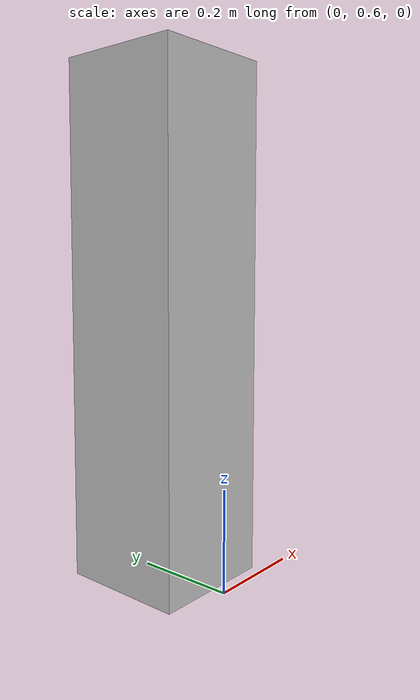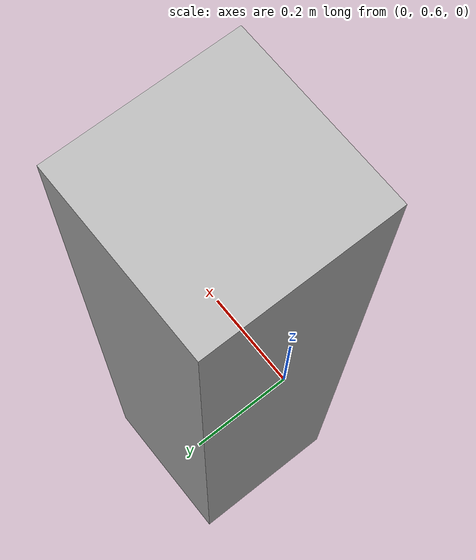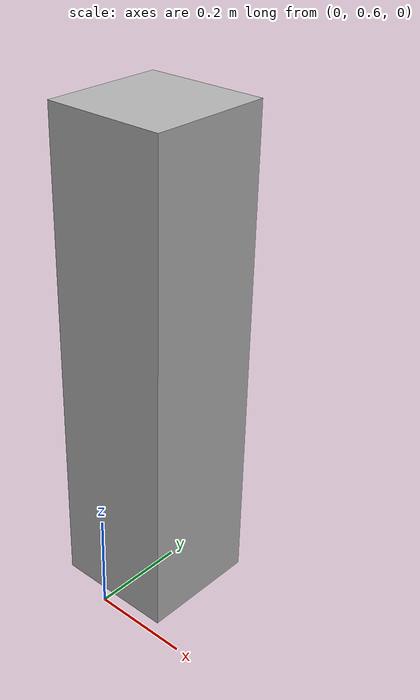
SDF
<sdf version='1.12'>
  <model name='square_2'>
    <plugin filename="gz-sim-touchplugin-system"            name="gz::sim::systems::TouchPlugin">        <target>turtlebot3_burger</target>        <namespace>obstacle</namespace>        <time>0.001</time>        <enabled>true</enabled>    </plugin>    <pose>0.0 0.75 0.5 0.0 0.0 0.0</pose>
    <link name='box_link'>
      <sensor name='sensor_contact' type='contact'>          <contact>              <collision>box_collision</collision>          </contact>      </sensor>      <inertial>
        <inertia>
          <ixx>10.625</ixx>
          <ixy>0</ixy>
          <ixz>0</ixz>
          <iyy>10.625</iyy>
          <iyz>0</iyz>
          <izz>1.25</izz>
        </inertia>
        <mass>120</mass>
        <pose>0 0 0 0 0 0</pose>
      </inertial>
      <collision name='box_collision'>
        <geometry>
          <box>
            <size>0.25 0.25 1.0</size>
          </box>
        </geometry>
        <surface>
          <friction>
            <ode/>
          </friction>
          <bounce/>
          <contact/>
        </surface>
      </collision>
      <visual name='box_visual'>
        <geometry>
          <box>
            <size>0.25 0.25 1.0</size>
          </box>
        </geometry>
        <material>
          <ambient>0.300000012 0.300000012 0.300000012 1</ambient>
          <diffuse>0.699999988 0.699999988 0.699999988 1</diffuse>
          <specular>1 1 1 1</specular>
        </material>
      </visual>
      <pose>0 0 0 0 0 0</pose>
      <enable_wind>false</enable_wind>
    </link>
    <static>false</static>
    <self_collide>false</self_collide>
  </model>
</sdf>
